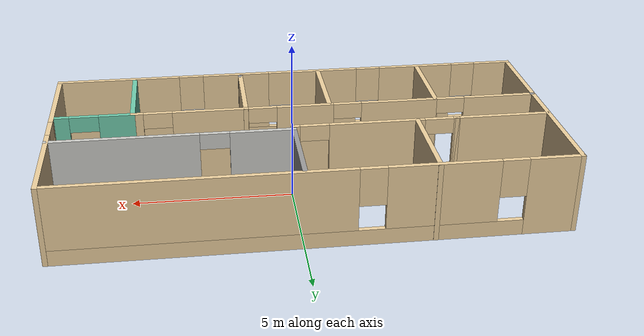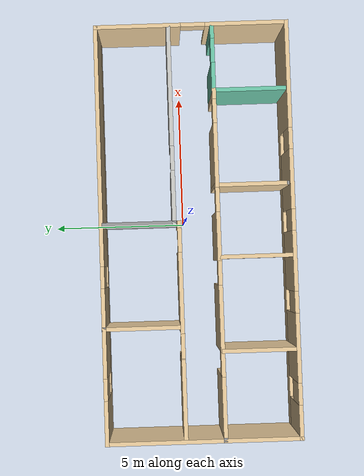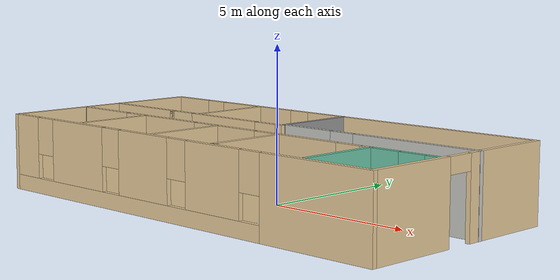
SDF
<?xml version='1.0'?>
<sdf version='1.6'>
  <model name='smallHospital4'>
    <pose frame=''>-0.34495 -0.462731 0 0 -0 0</pose>
    <link name='Wall_0'>
      <pose frame=''>-0.003329 3.54575 0 0 -0 0</pose>
      <visual name='Wall_0_Visual_0'>
        <pose frame=''>-6.92671 0 1.25 0 -0 0</pose>
        <geometry>
          <box>
            <size>1.64658 0.15 2.5</size>
          </box>
        </geometry>
        <material>
          <script>
            <uri>file://media/materials/scripts/gazebo.material</uri>
            <name>Gazebo/Grey</name>
          </script>
          <ambient>0.921569 0.807843 0.615686 1</ambient>
        </material>
        <meta>
          <layer>0</layer>
        </meta>
      </visual>
      <collision name='Wall_0_Collision_0'>
        <geometry>
          <box>
            <size>1.64658 0.15 2.5</size>
          </box>
        </geometry>
        <pose frame=''>-6.92671 0 1.25 0 -0 0</pose>
      </collision>
      <visual name='Wall_0_Visual_1'>
        <pose frame=''>0.82329 0 0.25 0 -0 0</pose>
        <geometry>
          <box>
            <size>13.8534 0.15 0.5</size>
          </box>
        </geometry>
        <material>
          <script>
            <uri>file://media/materials/scripts/gazebo.material</uri>
            <name>Gazebo/Grey</name>
          </script>
          <ambient>0.921569 0.807843 0.615686 1</ambient>
        </material>
        <meta>
          <layer>0</layer>
        </meta>
      </visual>
      <collision name='Wall_0_Collision_1'>
        <geometry>
          <box>
            <size>13.8534 0.15 0.5</size>
          </box>
        </geometry>
        <pose frame=''>0.82329 0 0.25 0 -0 0</pose>
      </collision>
      <visual name='Wall_0_Visual_2'>
        <pose frame=''>-3.65184 0 1.5 0 -0 0</pose>
        <geometry>
          <box>
            <size>3.30317 0.15 2</size>
          </box>
        </geometry>
        <material>
          <script>
            <uri>file://media/materials/scripts/gazebo.material</uri>
            <name>Gazebo/Grey</name>
          </script>
          <ambient>0.921569 0.807843 0.615686 1</ambient>
        </material>
        <meta>
          <layer>0</layer>
        </meta>
      </visual>
      <collision name='Wall_0_Collision_2'>
        <geometry>
          <box>
            <size>3.30317 0.15 2</size>
          </box>
        </geometry>
        <pose frame=''>-3.65184 0 1.5 0 -0 0</pose>
      </collision>
      <visual name='Wall_0_Visual_3'>
        <pose frame=''>3.27487 0 1.5 0 -0 0</pose>
        <geometry>
          <box>
            <size>8.95025 0.15 2</size>
          </box>
        </geometry>
        <material>
          <script>
            <uri>file://media/materials/scripts/gazebo.material</uri>
            <name>Gazebo/Grey</name>
          </script>
          <ambient>0.921569 0.807843 0.615686 1</ambient>
        </material>
        <meta>
          <layer>0</layer>
        </meta>
      </visual>
      <collision name='Wall_0_Collision_3'>
        <geometry>
          <box>
            <size>8.95025 0.15 2</size>
          </box>
        </geometry>
        <pose frame=''>3.27487 0 1.5 0 -0 0</pose>
      </collision>
      <visual name='Wall_0_Visual_4'>
        <pose frame=''>-5.70342 0 1.9 0 -0 0</pose>
        <geometry>
          <box>
            <size>0.8 0.15 1.2</size>
          </box>
        </geometry>
        <material>
          <script>
            <uri>file://media/materials/scripts/gazebo.material</uri>
            <name>Gazebo/Grey</name>
          </script>
          <ambient>0.921569 0.807843 0.615686 1</ambient>
        </material>
        <meta>
          <layer>0</layer>
        </meta>
      </visual>
      <collision name='Wall_0_Collision_4'>
        <geometry>
          <box>
            <size>0.8 0.15 1.2</size>
          </box>
        </geometry>
        <pose frame=''>-5.70342 0 1.9 0 -0 0</pose>
      </collision>
      <visual name='Wall_0_Visual_5'>
        <pose frame=''>-1.60025 0 1.9 0 -0 0</pose>
        <geometry>
          <box>
            <size>0.8 0.15 1.2</size>
          </box>
        </geometry>
        <material>
          <script>
            <uri>file://media/materials/scripts/gazebo.material</uri>
            <name>Gazebo/Grey</name>
          </script>
          <ambient>0.921569 0.807843 0.615686 1</ambient>
        </material>
        <meta>
          <layer>0</layer>
        </meta>
      </visual>
      <collision name='Wall_0_Collision_5'>
        <geometry>
          <box>
            <size>0.8 0.15 1.2</size>
          </box>
        </geometry>
        <pose frame=''>-1.60025 0 1.9 0 -0 0</pose>
      </collision>
    </link>
    <link name='Wall_1'>
      <pose frame=''>7.67167 -0.004248 0 0 -0 -1.5708</pose>
      <visual name='Wall_1_Visual_0'>
        <pose frame=''>-2.00152 0 1.25 0 -0 0</pose>
        <geometry>
          <box>
            <size>3.24697 0.15 2.5</size>
          </box>
        </geometry>
        <material>
          <script>
            <uri>file://media/materials/scripts/gazebo.material</uri>
            <name>Gazebo/Grey</name>
          </script>
          <ambient>0.921569 0.807843 0.615686 1</ambient>
        </material>
        <meta>
          <layer>0</layer>
        </meta>
      </visual>
      <collision name='Wall_1_Collision_0'>
        <geometry>
          <box>
            <size>3.24697 0.15 2.5</size>
          </box>
        </geometry>
        <pose frame=''>-2.00152 0 1.25 0 -0 0</pose>
      </collision>
      <visual name='Wall_1_Visual_1'>
        <pose frame=''>2.07348 0 1.25 0 -0 0</pose>
        <geometry>
          <box>
            <size>3.10303 0.15 2.5</size>
          </box>
        </geometry>
        <material>
          <script>
            <uri>file://media/materials/scripts/gazebo.material</uri>
            <name>Gazebo/Grey</name>
          </script>
          <ambient>0.921569 0.807843 0.615686 1</ambient>
        </material>
        <meta>
          <layer>0</layer>
        </meta>
      </visual>
      <collision name='Wall_1_Collision_1'>
        <geometry>
          <box>
            <size>3.10303 0.15 2.5</size>
          </box>
        </geometry>
        <pose frame=''>2.07348 0 1.25 0 -0 0</pose>
      </collision>
      <visual name='Wall_1_Visual_2'>
        <pose frame=''>0.071968 0 2.25 0 -0 0</pose>
        <geometry>
          <box>
            <size>0.9 0.15 0.5</size>
          </box>
        </geometry>
        <material>
          <script>
            <uri>file://media/materials/scripts/gazebo.material</uri>
            <name>Gazebo/Grey</name>
          </script>
          <ambient>0.921569 0.807843 0.615686 1</ambient>
        </material>
        <meta>
          <layer>0</layer>
        </meta>
      </visual>
      <collision name='Wall_1_Collision_2'>
        <geometry>
          <box>
            <size>0.9 0.15 0.5</size>
          </box>
        </geometry>
        <pose frame=''>0.071968 0 2.25 0 -0 0</pose>
      </collision>
    </link>
    <link name='Wall_11'>
      <pose frame=''>6.37309 -0.783391 0 0 -0 3.14159</pose>
      <visual name='Wall_11_Visual_0'>
        <pose frame=''>-1.00946 0 1.25 0 -0 0</pose>
        <geometry>
          <box>
            <size>0.481089 0.15 2.5</size>
          </box>
        </geometry>
        <material>
          <script>
            <uri>file://media/materials/scripts/gazebo.material</uri>
            <name>Gazebo/Grey</name>
          </script>
          <ambient>0.435294 0.796078 0.67451 1</ambient>
        </material>
        <meta>
          <layer>0</layer>
        </meta>
      </visual>
      <collision name='Wall_11_Collision_0'>
        <geometry>
          <box>
            <size>0.481089 0.15 2.5</size>
          </box>
        </geometry>
        <pose frame=''>-1.00946 0 1.25 0 -0 0</pose>
      </collision>
      <visual name='Wall_11_Visual_1'>
        <pose frame=''>0.690544 0 1.25 0 -0 0</pose>
        <geometry>
          <box>
            <size>1.11891 0.15 2.5</size>
          </box>
        </geometry>
        <material>
          <script>
            <uri>file://media/materials/scripts/gazebo.material</uri>
            <name>Gazebo/Grey</name>
          </script>
          <ambient>0.435294 0.796078 0.67451 1</ambient>
        </material>
        <meta>
          <layer>0</layer>
        </meta>
      </visual>
      <collision name='Wall_11_Collision_1'>
        <geometry>
          <box>
            <size>1.11891 0.15 2.5</size>
          </box>
        </geometry>
        <pose frame=''>0.690544 0 1.25 0 -0 0</pose>
      </collision>
      <visual name='Wall_11_Visual_2'>
        <pose frame=''>-0.318911 0 2.25 0 -0 0</pose>
        <geometry>
          <box>
            <size>0.9 0.15 0.5</size>
          </box>
        </geometry>
        <material>
          <script>
            <uri>file://media/materials/scripts/gazebo.material</uri>
            <name>Gazebo/Grey</name>
          </script>
          <ambient>0.435294 0.796078 0.67451 1</ambient>
        </material>
        <meta>
          <layer>0</layer>
        </meta>
      </visual>
      <collision name='Wall_11_Collision_2'>
        <geometry>
          <box>
            <size>0.9 0.15 0.5</size>
          </box>
        </geometry>
        <pose frame=''>-0.318911 0 2.25 0 -0 0</pose>
      </collision>
    </link>
    <link name='Wall_13'>
      <collision name='Wall_13_Collision'>
        <geometry>
          <box>
            <size>2.75 0.15 2.5</size>
          </box>
        </geometry>
        <pose frame=''>0 0 1.25 0 -0 0</pose>
      </collision>
      <visual name='Wall_13_Visual'>
        <pose frame=''>0 0 1.25 0 -0 0</pose>
        <geometry>
          <box>
            <size>2.75 0.15 2.5</size>
          </box>
        </geometry>
        <material>
          <script>
            <uri>file://media/materials/scripts/gazebo.material</uri>
            <name>Gazebo/Grey</name>
          </script>
          <ambient>0.435294 0.796078 0.67451 1</ambient>
        </material>
        <meta>
          <layer>0</layer>
        </meta>
      </visual>
      <pose frame=''>5.19809 -2.08339 0 0 -0 -1.5708</pose>
    </link>
    <link name='Wall_16'>
      <pose frame=''>-1.22691 -0.783391 0 0 -0 3.14159</pose>
      <visual name='Wall_16_Visual_0'>
        <pose frame=''>-6.30106 0 1.25 0 -0 0</pose>
        <geometry>
          <box>
            <size>0.397889 0.15 2.5</size>
          </box>
        </geometry>
        <material>
          <script>
            <uri>file://media/materials/scripts/gazebo.material</uri>
            <name>Gazebo/Grey</name>
          </script>
          <ambient>0.921569 0.807843 0.615686 1</ambient>
        </material>
        <meta>
          <layer>0</layer>
        </meta>
      </visual>
      <collision name='Wall_16_Collision_0'>
        <geometry>
          <box>
            <size>0.397889 0.15 2.5</size>
          </box>
        </geometry>
        <pose frame=''>-6.30106 0 1.25 0 -0 0</pose>
      </collision>
      <visual name='Wall_16_Visual_1'>
        <pose frame=''>-4.00984 0 1.25 0 -0 0</pose>
        <geometry>
          <box>
            <size>2.38455 0.15 2.5</size>
          </box>
        </geometry>
        <material>
          <script>
            <uri>file://media/materials/scripts/gazebo.material</uri>
            <name>Gazebo/Grey</name>
          </script>
          <ambient>0.921569 0.807843 0.615686 1</ambient>
        </material>
        <meta>
          <layer>0</layer>
        </meta>
      </visual>
      <collision name='Wall_16_Collision_1'>
        <geometry>
          <box>
            <size>2.38455 0.15 2.5</size>
          </box>
        </geometry>
        <pose frame=''>-4.00984 0 1.25 0 -0 0</pose>
      </collision>
      <visual name='Wall_16_Visual_2'>
        <pose frame=''>-1.01442 0 1.25 0 -0 0</pose>
        <geometry>
          <box>
            <size>1.80628 0.15 2.5</size>
          </box>
        </geometry>
        <material>
          <script>
            <uri>file://media/materials/scripts/gazebo.material</uri>
            <name>Gazebo/Grey</name>
          </script>
          <ambient>0.921569 0.807843 0.615686 1</ambient>
        </material>
        <meta>
          <layer>0</layer>
        </meta>
      </visual>
      <collision name='Wall_16_Collision_2'>
        <geometry>
          <box>
            <size>1.80628 0.15 2.5</size>
          </box>
        </geometry>
        <pose frame=''>-1.01442 0 1.25 0 -0 0</pose>
      </collision>
      <visual name='Wall_16_Visual_3'>
        <pose frame=''>2.01568 0 1.25 0 -0 0</pose>
        <geometry>
          <box>
            <size>2.45394 0.15 2.5</size>
          </box>
        </geometry>
        <material>
          <script>
            <uri>file://media/materials/scripts/gazebo.material</uri>
            <name>Gazebo/Grey</name>
          </script>
          <ambient>0.921569 0.807843 0.615686 1</ambient>
        </material>
        <meta>
          <layer>0</layer>
        </meta>
      </visual>
      <collision name='Wall_16_Collision_3'>
        <geometry>
          <box>
            <size>2.45394 0.15 2.5</size>
          </box>
        </geometry>
        <pose frame=''>2.01568 0 1.25 0 -0 0</pose>
      </collision>
      <visual name='Wall_16_Visual_4'>
        <pose frame=''>5.32133 0 1.25 0 -0 0</pose>
        <geometry>
          <box>
            <size>2.35735 0.15 2.5</size>
          </box>
        </geometry>
        <material>
          <script>
            <uri>file://media/materials/scripts/gazebo.material</uri>
            <name>Gazebo/Grey</name>
          </script>
          <ambient>0.921569 0.807843 0.615686 1</ambient>
        </material>
        <meta>
          <layer>0</layer>
        </meta>
      </visual>
      <collision name='Wall_16_Collision_4'>
        <geometry>
          <box>
            <size>2.35735 0.15 2.5</size>
          </box>
        </geometry>
        <pose frame=''>5.32133 0 1.25 0 -0 0</pose>
      </collision>
      <visual name='Wall_16_Visual_5'>
        <pose frame=''>-5.65211 0 2.25 0 -0 0</pose>
        <geometry>
          <box>
            <size>0.9 0.15 0.5</size>
          </box>
        </geometry>
        <material>
          <script>
            <uri>file://media/materials/scripts/gazebo.material</uri>
            <name>Gazebo/Grey</name>
          </script>
          <ambient>0.921569 0.807843 0.615686 1</ambient>
        </material>
        <meta>
          <layer>0</layer>
        </meta>
      </visual>
      <collision name='Wall_16_Collision_5'>
        <geometry>
          <box>
            <size>0.9 0.15 0.5</size>
          </box>
        </geometry>
        <pose frame=''>-5.65211 0 2.25 0 -0 0</pose>
      </collision>
      <visual name='Wall_16_Visual_6'>
        <pose frame=''>-2.36756 0 2.25 0 -0 0</pose>
        <geometry>
          <box>
            <size>0.9 0.15 0.5</size>
          </box>
        </geometry>
        <material>
          <script>
            <uri>file://media/materials/scripts/gazebo.material</uri>
            <name>Gazebo/Grey</name>
          </script>
          <ambient>0.921569 0.807843 0.615686 1</ambient>
        </material>
        <meta>
          <layer>0</layer>
        </meta>
      </visual>
      <collision name='Wall_16_Collision_6'>
        <geometry>
          <box>
            <size>0.9 0.15 0.5</size>
          </box>
        </geometry>
        <pose frame=''>-2.36756 0 2.25 0 -0 0</pose>
      </collision>
      <visual name='Wall_16_Visual_7'>
        <pose frame=''>0.338716 0 2.25 0 -0 0</pose>
        <geometry>
          <box>
            <size>0.9 0.15 0.5</size>
          </box>
        </geometry>
        <material>
          <script>
            <uri>file://media/materials/scripts/gazebo.material</uri>
            <name>Gazebo/Grey</name>
          </script>
          <ambient>0.921569 0.807843 0.615686 1</ambient>
        </material>
        <meta>
          <layer>0</layer>
        </meta>
      </visual>
      <collision name='Wall_16_Collision_7'>
        <geometry>
          <box>
            <size>0.9 0.15 0.5</size>
          </box>
        </geometry>
        <pose frame=''>0.338716 0 2.25 0 -0 0</pose>
      </collision>
      <visual name='Wall_16_Visual_8'>
        <pose frame=''>3.69265 0 2.25 0 -0 0</pose>
        <geometry>
          <box>
            <size>0.9 0.15 0.5</size>
          </box>
        </geometry>
        <material>
          <script>
            <uri>file://media/materials/scripts/gazebo.material</uri>
            <name>Gazebo/Grey</name>
          </script>
          <ambient>0.921569 0.807843 0.615686 1</ambient>
        </material>
        <meta>
          <layer>0</layer>
        </meta>
      </visual>
      <collision name='Wall_16_Collision_8'>
        <geometry>
          <box>
            <size>0.9 0.15 0.5</size>
          </box>
        </geometry>
        <pose frame=''>3.69265 0 2.25 0 -0 0</pose>
      </collision>
    </link>
    <link name='Wall_17'>
      <collision name='Wall_17_Collision'>
        <geometry>
          <box>
            <size>0.15 0.15 2.5</size>
          </box>
        </geometry>
        <pose frame=''>0 0 1.25 0 -0 0</pose>
      </collision>
      <visual name='Wall_17_Visual'>
        <pose frame=''>0 0 1.25 0 -0 0</pose>
        <geometry>
          <box>
            <size>0.15 0.15 2.5</size>
          </box>
        </geometry>
        <material>
          <script>
            <uri>file://media/materials/scripts/gazebo.material</uri>
            <name>Gazebo/Grey</name>
          </script>
          <ambient>1 1 1 1</ambient>
        </material>
        <meta>
          <layer>0</layer>
        </meta>
      </visual>
      <pose frame=''>-7.65191 -0.783391 0 0 -0 0</pose>
    </link>
    <link name='Wall_19'>
      <collision name='Wall_19_Collision'>
        <geometry>
          <box>
            <size>3 0.15 2.5</size>
          </box>
        </geometry>
        <pose frame=''>0 0 1.25 0 -0 0</pose>
      </collision>
      <visual name='Wall_19_Visual'>
        <pose frame=''>0 0 1.25 0 -0 0</pose>
        <geometry>
          <box>
            <size>3 0.15 2.5</size>
          </box>
        </geometry>
        <material>
          <script>
            <uri>file://media/materials/scripts/gazebo.material</uri>
            <name>Gazebo/Grey</name>
          </script>
          <ambient>0.921569 0.807843 0.615686 1</ambient>
        </material>
        <meta>
          <layer>0</layer>
        </meta>
      </visual>
      <pose frame=''>-3.50859 2.12925 0 0 -0 1.5708</pose>
    </link>
    <link name='Wall_2'>
      <pose frame=''>-0.003329 -3.55425 0 0 -0 3.14159</pose>
      <visual name='Wall_2_Visual_0'>
        <pose frame=''>-5.73879 0 1.25 0 -0 0</pose>
        <geometry>
          <box>
            <size>4.02243 0.15 2.5</size>
          </box>
        </geometry>
        <material>
          <script>
            <uri>file://media/materials/scripts/gazebo.material</uri>
            <name>Gazebo/Grey</name>
          </script>
          <ambient>0.921569 0.807843 0.615686 1</ambient>
        </material>
        <meta>
          <layer>0</layer>
        </meta>
      </visual>
      <collision name='Wall_2_Collision_0'>
        <geometry>
          <box>
            <size>4.02243 0.15 2.5</size>
          </box>
        </geometry>
        <pose frame=''>-5.73879 0 1.25 0 -0 0</pose>
      </collision>
      <visual name='Wall_2_Visual_1'>
        <pose frame=''>2.01121 0 0.25 0 -0 0</pose>
        <geometry>
          <box>
            <size>11.4776 0.15 0.5</size>
          </box>
        </geometry>
        <material>
          <script>
            <uri>file://media/materials/scripts/gazebo.material</uri>
            <name>Gazebo/Grey</name>
          </script>
          <ambient>0.921569 0.807843 0.615686 1</ambient>
        </material>
        <meta>
          <layer>0</layer>
        </meta>
      </visual>
      <collision name='Wall_2_Collision_1'>
        <geometry>
          <box>
            <size>11.4776 0.15 0.5</size>
          </box>
        </geometry>
        <pose frame=''>2.01121 0 0.25 0 -0 0</pose>
      </collision>
      <visual name='Wall_2_Visual_2'>
        <pose frame=''>-1.81906 0 1.5 0 -0 0</pose>
        <geometry>
          <box>
            <size>2.21704 0.15 2</size>
          </box>
        </geometry>
        <material>
          <script>
            <uri>file://media/materials/scripts/gazebo.material</uri>
            <name>Gazebo/Grey</name>
          </script>
          <ambient>0.921569 0.807843 0.615686 1</ambient>
        </material>
        <meta>
          <layer>0</layer>
        </meta>
      </visual>
      <collision name='Wall_2_Collision_2'>
        <geometry>
          <box>
            <size>2.21704 0.15 2</size>
          </box>
        </geometry>
        <pose frame=''>-1.81906 0 1.5 0 -0 0</pose>
      </collision>
      <visual name='Wall_2_Visual_3'>
        <pose frame=''>1.20804 0 1.5 0 -0 0</pose>
        <geometry>
          <box>
            <size>2.23715 0.15 2</size>
          </box>
        </geometry>
        <material>
          <script>
            <uri>file://media/materials/scripts/gazebo.material</uri>
            <name>Gazebo/Grey</name>
          </script>
          <ambient>0.921569 0.807843 0.615686 1</ambient>
        </material>
        <meta>
          <layer>0</layer>
        </meta>
      </visual>
      <collision name='Wall_2_Collision_3'>
        <geometry>
          <box>
            <size>2.23715 0.15 2</size>
          </box>
        </geometry>
        <pose frame=''>1.20804 0 1.5 0 -0 0</pose>
      </collision>
      <visual name='Wall_2_Visual_4'>
        <pose frame=''>4.40181 0 1.5 0 -0 0</pose>
        <geometry>
          <box>
            <size>2.55039 0.15 2</size>
          </box>
        </geometry>
        <material>
          <script>
            <uri>file://media/materials/scripts/gazebo.material</uri>
            <name>Gazebo/Grey</name>
          </script>
          <ambient>0.921569 0.807843 0.615686 1</ambient>
        </material>
        <meta>
          <layer>0</layer>
        </meta>
      </visual>
      <collision name='Wall_2_Collision_4'>
        <geometry>
          <box>
            <size>2.55039 0.15 2</size>
          </box>
        </geometry>
        <pose frame=''>4.40181 0 1.5 0 -0 0</pose>
      </collision>
      <visual name='Wall_2_Visual_5'>
        <pose frame=''>7.1135 0 1.5 0 -0 0</pose>
        <geometry>
          <box>
            <size>1.273 0.15 2</size>
          </box>
        </geometry>
        <material>
          <script>
            <uri>file://media/materials/scripts/gazebo.material</uri>
            <name>Gazebo/Grey</name>
          </script>
          <ambient>0.921569 0.807843 0.615686 1</ambient>
        </material>
        <meta>
          <layer>0</layer>
        </meta>
      </visual>
      <collision name='Wall_2_Collision_5'>
        <geometry>
          <box>
            <size>1.273 0.15 2</size>
          </box>
        </geometry>
        <pose frame=''>7.1135 0 1.5 0 -0 0</pose>
      </collision>
      <visual name='Wall_2_Visual_6'>
        <pose frame=''>-3.32757 0 1.9 0 -0 0</pose>
        <geometry>
          <box>
            <size>0.8 0.15 1.2</size>
          </box>
        </geometry>
        <material>
          <script>
            <uri>file://media/materials/scripts/gazebo.material</uri>
            <name>Gazebo/Grey</name>
          </script>
          <ambient>0.921569 0.807843 0.615686 1</ambient>
        </material>
        <meta>
          <layer>0</layer>
        </meta>
      </visual>
      <collision name='Wall_2_Collision_6'>
        <geometry>
          <box>
            <size>0.8 0.15 1.2</size>
          </box>
        </geometry>
        <pose frame=''>-3.32757 0 1.9 0 -0 0</pose>
      </collision>
      <visual name='Wall_2_Visual_7'>
        <pose frame=''>-0.310538 0 1.9 0 -0 0</pose>
        <geometry>
          <box>
            <size>0.8 0.15 1.2</size>
          </box>
        </geometry>
        <material>
          <script>
            <uri>file://media/materials/scripts/gazebo.material</uri>
            <name>Gazebo/Grey</name>
          </script>
          <ambient>0.921569 0.807843 0.615686 1</ambient>
        </material>
        <meta>
          <layer>0</layer>
        </meta>
      </visual>
      <collision name='Wall_2_Collision_7'>
        <geometry>
          <box>
            <size>0.8 0.15 1.2</size>
          </box>
        </geometry>
        <pose frame=''>-0.310538 0 1.9 0 -0 0</pose>
      </collision>
      <visual name='Wall_2_Visual_8'>
        <pose frame=''>2.72661 0 1.9 0 -0 0</pose>
        <geometry>
          <box>
            <size>0.8 0.15 1.2</size>
          </box>
        </geometry>
        <material>
          <script>
            <uri>file://media/materials/scripts/gazebo.material</uri>
            <name>Gazebo/Grey</name>
          </script>
          <ambient>0.921569 0.807843 0.615686 1</ambient>
        </material>
        <meta>
          <layer>0</layer>
        </meta>
      </visual>
      <collision name='Wall_2_Collision_8'>
        <geometry>
          <box>
            <size>0.8 0.15 1.2</size>
          </box>
        </geometry>
        <pose frame=''>2.72661 0 1.9 0 -0 0</pose>
      </collision>
      <visual name='Wall_2_Visual_9'>
        <pose frame=''>6.077 0 1.9 0 -0 0</pose>
        <geometry>
          <box>
            <size>0.8 0.15 1.2</size>
          </box>
        </geometry>
        <material>
          <script>
            <uri>file://media/materials/scripts/gazebo.material</uri>
            <name>Gazebo/Grey</name>
          </script>
          <ambient>0.921569 0.807843 0.615686 1</ambient>
        </material>
        <meta>
          <layer>0</layer>
        </meta>
      </visual>
      <collision name='Wall_2_Collision_9'>
        <geometry>
          <box>
            <size>0.8 0.15 1.2</size>
          </box>
        </geometry>
        <pose frame=''>6.077 0 1.9 0 -0 0</pose>
      </collision>
    </link>
    <link name='Wall_20'>
      <collision name='Wall_20_Collision'>
        <geometry>
          <box>
            <size>0.15 0.15 2.5</size>
          </box>
        </geometry>
        <pose frame=''>0 0 1.25 0 -0 0</pose>
      </collision>
      <visual name='Wall_20_Visual'>
        <pose frame=''>0 0 1.25 0 -0 0</pose>
        <geometry>
          <box>
            <size>0.15 0.15 2.5</size>
          </box>
        </geometry>
        <material>
          <script>
            <uri>file://media/materials/scripts/gazebo.material</uri>
            <name>Gazebo/Grey</name>
          </script>
          <ambient>1 1 1 1</ambient>
        </material>
        <meta>
          <layer>0</layer>
        </meta>
      </visual>
      <pose frame=''>-3.50859 3.55425 0 0 -0 0</pose>
    </link>
    <link name='Wall_21'>
      <collision name='Wall_21_Collision'>
        <geometry>
          <box>
            <size>0.15 0.15 2.5</size>
          </box>
        </geometry>
        <pose frame=''>0 0 1.25 0 -0 0</pose>
      </collision>
      <visual name='Wall_21_Visual'>
        <pose frame=''>0 0 1.25 0 -0 0</pose>
        <geometry>
          <box>
            <size>0.15 0.15 2.5</size>
          </box>
        </geometry>
        <material>
          <script>
            <uri>file://media/materials/scripts/gazebo.material</uri>
            <name>Gazebo/Grey</name>
          </script>
          <ambient>1 1 1 1</ambient>
        </material>
        <meta>
          <layer>0</layer>
        </meta>
      </visual>
      <pose frame=''>-3.50859 3.55425 0 0 -0 0</pose>
    </link>
    <link name='Wall_23'>
      <collision name='Wall_23_Collision'>
        <geometry>
          <box>
            <size>2.75 0.15 2.5</size>
          </box>
        </geometry>
        <pose frame=''>0 0 1.25 0 -0 0</pose>
      </collision>
      <visual name='Wall_23_Visual'>
        <pose frame=''>0 0 1.25 0 -0 0</pose>
        <geometry>
          <box>
            <size>2.75 0.15 2.5</size>
          </box>
        </geometry>
        <material>
          <script>
            <uri>file://media/materials/scripts/gazebo.material</uri>
            <name>Gazebo/Grey</name>
          </script>
          <ambient>0.921569 0.807843 0.615686 1</ambient>
        </material>
        <meta>
          <layer>0</layer>
        </meta>
      </visual>
      <pose frame=''>-4.43382 -2.12237 0 0 -0 -1.5708</pose>
    </link>
    <link name='Wall_25'>
      <collision name='Wall_25_Collision'>
        <geometry>
          <box>
            <size>2.75 0.15 2.5</size>
          </box>
        </geometry>
        <pose frame=''>0 0 1.25 0 -0 0</pose>
      </collision>
      <visual name='Wall_25_Visual'>
        <pose frame=''>0 0 1.25 0 -0 0</pose>
        <geometry>
          <box>
            <size>2.75 0.15 2.5</size>
          </box>
        </geometry>
        <material>
          <script>
            <uri>file://media/materials/scripts/gazebo.material</uri>
            <name>Gazebo/Grey</name>
          </script>
          <ambient>0.921569 0.807843 0.615686 1</ambient>
        </material>
        <meta>
          <layer>0</layer>
        </meta>
      </visual>
      <pose frame=''>-0.987357 -2.16863 0 0 -0 -1.5708</pose>
    </link>
    <link name='Wall_27'>
      <collision name='Wall_27_Collision'>
        <geometry>
          <box>
            <size>2.75 0.15 2.5</size>
          </box>
        </geometry>
        <pose frame=''>0 0 1.25 0 -0 0</pose>
      </collision>
      <visual name='Wall_27_Visual'>
        <pose frame=''>0 0 1.25 0 -0 0</pose>
        <geometry>
          <box>
            <size>2.75 0.15 2.5</size>
          </box>
        </geometry>
        <material>
          <script>
            <uri>file://media/materials/scripts/gazebo.material</uri>
            <name>Gazebo/Grey</name>
          </script>
          <ambient>0.921569 0.807843 0.615686 1</ambient>
        </material>
        <meta>
          <layer>0</layer>
        </meta>
      </visual>
      <pose frame=''>1.67266 -2.07611 0 0 -0 -1.5708</pose>
    </link>
    <link name='Wall_28'>
      <collision name='Wall_28_Collision'>
        <geometry>
          <box>
            <size>0.15 0.15 2.5</size>
          </box>
        </geometry>
        <pose frame=''>0 0 1.25 0 -0 0</pose>
      </collision>
      <visual name='Wall_28_Visual'>
        <pose frame=''>0 0 1.25 0 -0 0</pose>
        <geometry>
          <box>
            <size>0.15 0.15 2.5</size>
          </box>
        </geometry>
        <material>
          <script>
            <uri>file://media/materials/scripts/gazebo.material</uri>
            <name>Gazebo/Grey</name>
          </script>
          <ambient>1 1 1 1</ambient>
        </material>
        <meta>
          <layer>0</layer>
        </meta>
      </visual>
      <pose frame=''>1.67266 -3.37611 0 0 -0 0</pose>
    </link>
    <link name='Wall_3'>
      <collision name='Wall_3_Collision'>
        <geometry>
          <box>
            <size>7.25 0.15 2.5</size>
          </box>
        </geometry>
        <pose frame=''>0 0 1.25 0 -0 0</pose>
      </collision>
      <visual name='Wall_3_Visual'>
        <pose frame=''>0 0 1.25 0 -0 0</pose>
        <geometry>
          <box>
            <size>7.25 0.15 2.5</size>
          </box>
        </geometry>
        <material>
          <script>
            <uri>file://media/materials/scripts/gazebo.material</uri>
            <name>Gazebo/Grey</name>
          </script>
          <ambient>0.921569 0.807843 0.615686 1</ambient>
        </material>
        <meta>
          <layer>0</layer>
        </meta>
      </visual>
      <pose frame=''>-7.67833 -0.004248 0 0 -0 1.5708</pose>
    </link>
    <link name='Wall_5'>
      <collision name='Wall_5_Collision'>
        <geometry>
          <box>
            <size>2.75 0.15 2.5</size>
          </box>
        </geometry>
        <pose frame=''>0 0 1.25 0 -0 0</pose>
      </collision>
      <visual name='Wall_5_Visual'>
        <pose frame=''>0 0 1.25 0 -0 0</pose>
        <geometry>
          <box>
            <size>2.75 0.15 2.5</size>
          </box>
        </geometry>
        <material>
          <script>
            <uri>file://media/materials/scripts/gazebo.material</uri>
            <name>Gazebo/Grey</name>
          </script>
          <ambient>1 1 1 1</ambient>
        </material>
        <meta>
          <layer>0</layer>
        </meta>
      </visual>
      <pose frame=''>0.32833 2.13935 0 0 -0 -1.5708</pose>
    </link>
    <link name='Wall_6'>
      <pose frame=''>4.00333 0.839351 0 0 -0 0</pose>
      <visual name='Wall_6_Visual_0'>
        <pose frame=''>-2.74026 0 1.25 0 -0 0</pose>
        <geometry>
          <box>
            <size>2.01947 0.15 2.5</size>
          </box>
        </geometry>
        <material>
          <script>
            <uri>file://media/materials/scripts/gazebo.material</uri>
            <name>Gazebo/CeilingTiled</name>
          </script>
          <ambient>1 1 1 1</ambient>
        </material>
        <meta>
          <layer>0</layer>
        </meta>
      </visual>
      <collision name='Wall_6_Collision_0'>
        <geometry>
          <box>
            <size>2.01947 0.15 2.5</size>
          </box>
        </geometry>
        <pose frame=''>-2.74026 0 1.25 0 -0 0</pose>
      </collision>
      <visual name='Wall_6_Visual_1'>
        <pose frame=''>1.45974 0 1.25 0 -0 0</pose>
        <geometry>
          <box>
            <size>4.58053 0.15 2.5</size>
          </box>
        </geometry>
        <material>
          <script>
            <uri>file://media/materials/scripts/gazebo.material</uri>
            <name>Gazebo/CeilingTiled</name>
          </script>
          <ambient>1 1 1 1</ambient>
        </material>
        <meta>
          <layer>0</layer>
        </meta>
      </visual>
      <collision name='Wall_6_Collision_1'>
        <geometry>
          <box>
            <size>4.58053 0.15 2.5</size>
          </box>
        </geometry>
        <pose frame=''>1.45974 0 1.25 0 -0 0</pose>
      </collision>
      <visual name='Wall_6_Visual_2'>
        <pose frame=''>-1.28053 0 2.25 0 -0 0</pose>
        <geometry>
          <box>
            <size>0.9 0.15 0.5</size>
          </box>
        </geometry>
        <material>
          <script>
            <uri>file://media/materials/scripts/gazebo.material</uri>
            <name>Gazebo/CeilingTiled</name>
          </script>
          <ambient>1 1 1 1</ambient>
        </material>
        <meta>
          <layer>0</layer>
        </meta>
      </visual>
      <collision name='Wall_6_Collision_2'>
        <geometry>
          <box>
            <size>0.9 0.15 0.5</size>
          </box>
        </geometry>
        <pose frame=''>-1.28053 0 2.25 0 -0 0</pose>
      </collision>
    </link>
    <link name='Wall_8'>
      <collision name='Wall_8_Collision'>
        <geometry>
          <box>
            <size>3 0.15 2.5</size>
          </box>
        </geometry>
        <pose frame=''>0 0 1.25 0 -0 0</pose>
      </collision>
      <visual name='Wall_8_Visual'>
        <pose frame=''>0 0 1.25 0 -0 0</pose>
        <geometry>
          <box>
            <size>3 0.15 2.5</size>
          </box>
        </geometry>
        <material>
          <script>
            <uri>file://media/materials/scripts/gazebo.material</uri>
            <name>Gazebo/Grey</name>
          </script>
          <ambient>0.921569 0.807843 0.615686 1</ambient>
        </material>
        <meta>
          <layer>0</layer>
        </meta>
      </visual>
      <pose frame=''>-6.19254 0.664787 0 0 -0 0</pose>
    </link>
    <link name='Wall_9'>
      <pose frame=''>-2.21754 0.664787 0 0 -0 0</pose>
      <visual name='Wall_9_Visual_0'>
        <pose frame=''>-2.52785 0 1.25 0 -0 0</pose>
        <geometry>
          <box>
            <size>0.194307 0.15 2.5</size>
          </box>
        </geometry>
        <material>
          <script>
            <uri>file://media/materials/scripts/gazebo.material</uri>
            <name>Gazebo/Grey</name>
          </script>
          <ambient>0.921569 0.807843 0.615686 1</ambient>
        </material>
        <meta>
          <layer>0</layer>
        </meta>
      </visual>
      <collision name='Wall_9_Collision_0'>
        <geometry>
          <box>
            <size>0.194307 0.15 2.5</size>
          </box>
        </geometry>
        <pose frame=''>-2.52785 0 1.25 0 -0 0</pose>
      </collision>
      <visual name='Wall_9_Visual_1'>
        <pose frame=''>-0.039733 0 1.25 0 -0 0</pose>
        <geometry>
          <box>
            <size>2.98192 0.15 2.5</size>
          </box>
        </geometry>
        <material>
          <script>
            <uri>file://media/materials/scripts/gazebo.material</uri>
            <name>Gazebo/Grey</name>
          </script>
          <ambient>0.921569 0.807843 0.615686 1</ambient>
        </material>
        <meta>
          <layer>0</layer>
        </meta>
      </visual>
      <collision name='Wall_9_Collision_1'>
        <geometry>
          <box>
            <size>2.98192 0.15 2.5</size>
          </box>
        </geometry>
        <pose frame=''>-0.039733 0 1.25 0 -0 0</pose>
      </collision>
      <visual name='Wall_9_Visual_2'>
        <pose frame=''>2.48811 0 1.25 0 -0 0</pose>
        <geometry>
          <box>
            <size>0.273773 0.15 2.5</size>
          </box>
        </geometry>
        <material>
          <script>
            <uri>file://media/materials/scripts/gazebo.material</uri>
            <name>Gazebo/Grey</name>
          </script>
          <ambient>0.921569 0.807843 0.615686 1</ambient>
        </material>
        <meta>
          <layer>0</layer>
        </meta>
      </visual>
      <collision name='Wall_9_Collision_2'>
        <geometry>
          <box>
            <size>0.273773 0.15 2.5</size>
          </box>
        </geometry>
        <pose frame=''>2.48811 0 1.25 0 -0 0</pose>
      </collision>
      <visual name='Wall_9_Visual_3'>
        <pose frame=''>-1.98069 0 2.25 0 -0 0</pose>
        <geometry>
          <box>
            <size>0.9 0.15 0.5</size>
          </box>
        </geometry>
        <material>
          <script>
            <uri>file://media/materials/scripts/gazebo.material</uri>
            <name>Gazebo/Grey</name>
          </script>
          <ambient>0.921569 0.807843 0.615686 1</ambient>
        </material>
        <meta>
          <layer>0</layer>
        </meta>
      </visual>
      <collision name='Wall_9_Collision_3'>
        <geometry>
          <box>
            <size>0.9 0.15 0.5</size>
          </box>
        </geometry>
        <pose frame=''>-1.98069 0 2.25 0 -0 0</pose>
      </collision>
      <visual name='Wall_9_Visual_4'>
        <pose frame=''>1.90123 0 2.25 0 -0 0</pose>
        <geometry>
          <box>
            <size>0.9 0.15 0.5</size>
          </box>
        </geometry>
        <material>
          <script>
            <uri>file://media/materials/scripts/gazebo.material</uri>
            <name>Gazebo/Grey</name>
          </script>
          <ambient>0.921569 0.807843 0.615686 1</ambient>
        </material>
        <meta>
          <layer>0</layer>
        </meta>
      </visual>
      <collision name='Wall_9_Collision_4'>
        <geometry>
          <box>
            <size>0.9 0.15 0.5</size>
          </box>
        </geometry>
        <pose frame=''>1.90123 0 2.25 0 -0 0</pose>
      </collision>
    </link>
    <static>1</static>
  </model>
</sdf>
